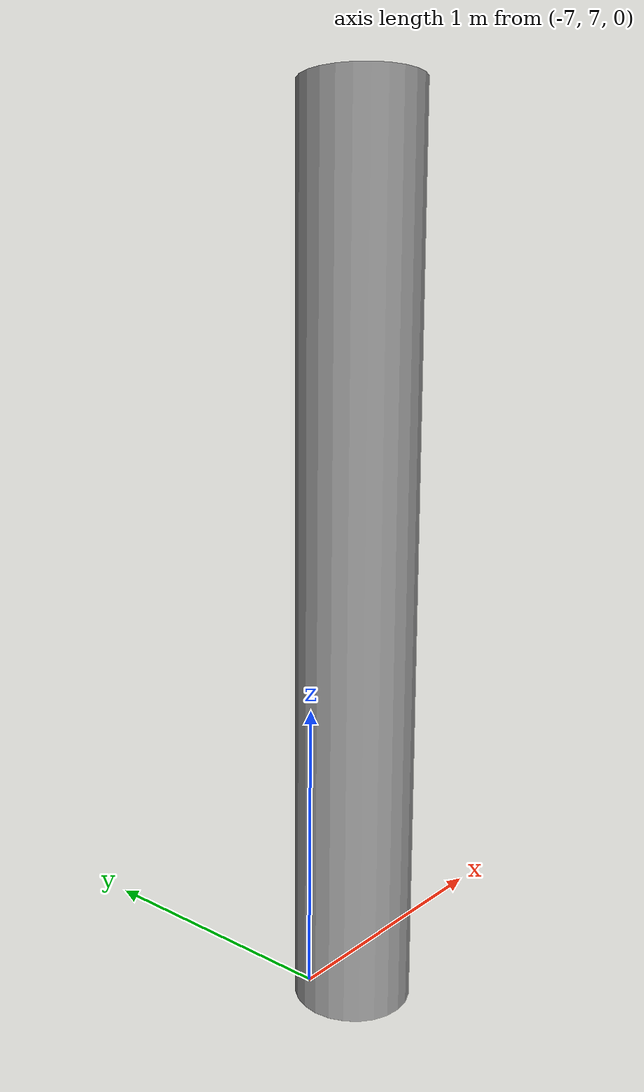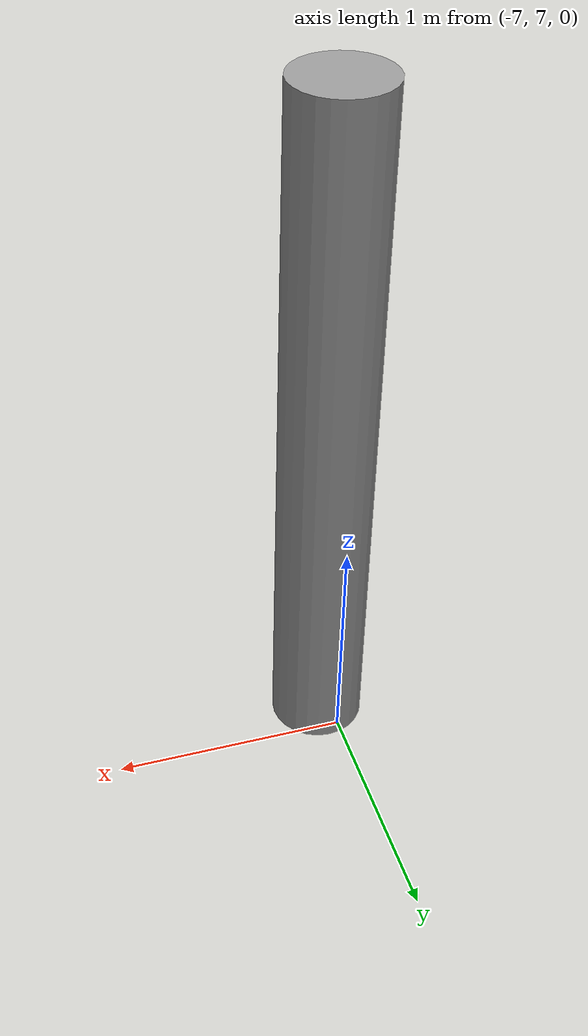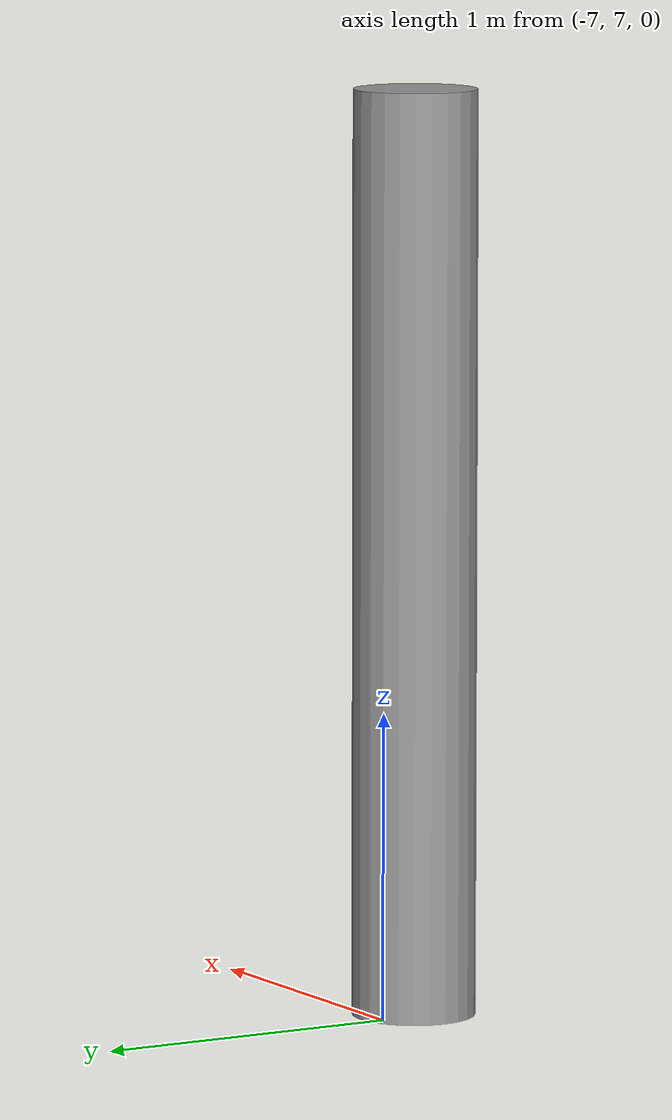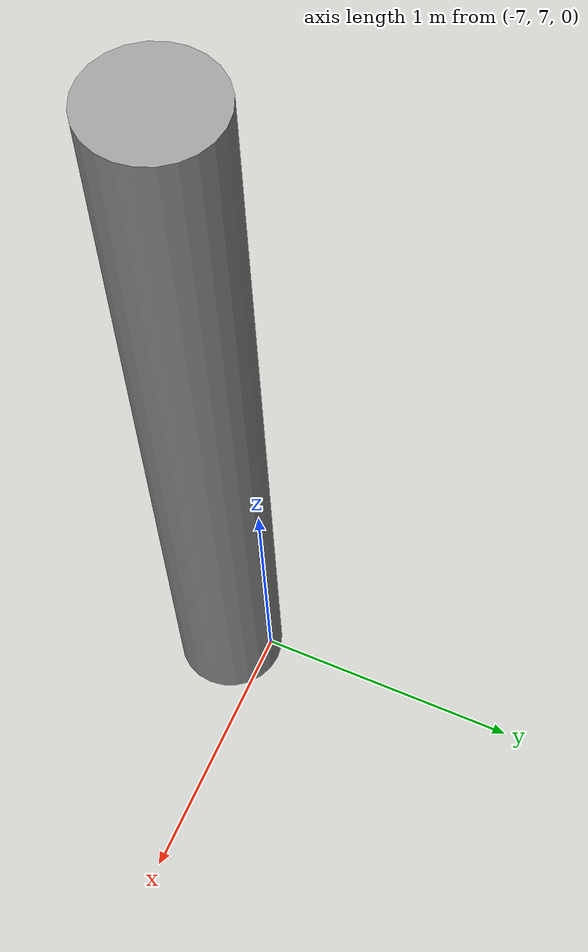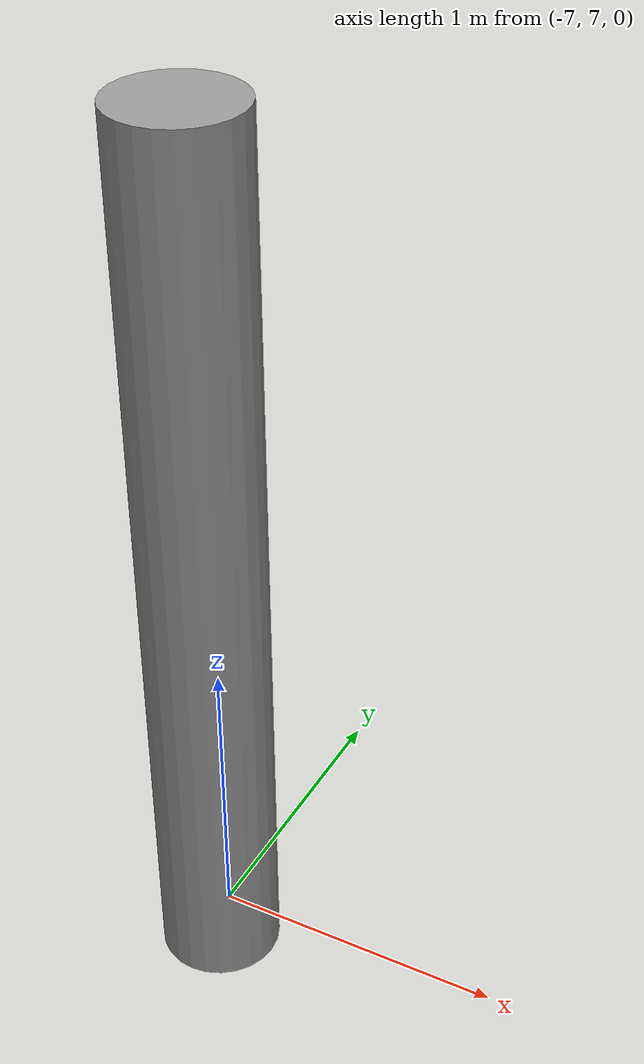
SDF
<?xml version='1.0'?>
<sdf version='1.6'>
  <model name='Pilar'>
    <link name='link_5'>
      <inertial>
        <mass>1</mass>
        <inertia>
          <ixx>0.145833</ixx>
          <ixy>0</ixy>
          <ixz>0</ixz>
          <iyy>0.145833</iyy>
          <iyz>0</iyz>
          <izz>0.125</izz>
        </inertia>
        <pose frame=''>0 0 0 0 -0 0</pose>
      </inertial>
      <pose frame=''>-6.94495 6.85405 0.5 0 -0 0</pose>
      <gravity>1</gravity>
      <self_collide>0</self_collide>
      <kinematic>0</kinematic>
      <enable_wind>0</enable_wind>
      <visual name='visual'>
        <pose frame=''>0 0 1 0 -0 0</pose>
        <geometry>
          <cylinder>
            <radius>0.2</radius>
            <length>3</length>
          </cylinder>
        </geometry>
        <material>
          <lighting>1</lighting>
          <script>
            <uri>file://media/materials/scripts/gazebo.material</uri>
            <name>Gazebo/Grey</name>
          </script>
          <shader type='vertex'>
            <normal_map>__default__</normal_map>
          </shader>
          <ambient>0.827 0.843 0.812 1</ambient>
          <diffuse>0.333 0.341 0.325 1</diffuse>
          <specular>0.333 0.341 0.325 1</specular>
          <emissive>0.333 0.341 0.325 1</emissive>
        </material>
        <transparency>0</transparency>
        <cast_shadows>1</cast_shadows>
      </visual>
      <collision name='collision'>
        <laser_retro>0</laser_retro>
        <max_contacts>10</max_contacts>
        <pose frame=''>0 0 1 0 -0 0</pose>
        <geometry>
          <cylinder>
            <radius>0.2</radius>
            <length>3</length>
          </cylinder>
        </geometry>
        <surface>
          <friction>
            <ode>
              <mu>1</mu>
              <mu2>1</mu2>
              <fdir1>0 0 0</fdir1>
              <slip1>0</slip1>
              <slip2>0</slip2>
            </ode>
            <torsional>
              <coefficient>1</coefficient>
              <patch_radius>0</patch_radius>
              <surface_radius>0</surface_radius>
              <use_patch_radius>1</use_patch_radius>
              <ode>
                <slip>0</slip>
              </ode>
            </torsional>
          </friction>
          <bounce>
            <restitution_coefficient>0</restitution_coefficient>
            <threshold>1e+06</threshold>
          </bounce>
          <contact>
            <collide_without_contact>0</collide_without_contact>
            <collide_without_contact_bitmask>1</collide_without_contact_bitmask>
            <collide_bitmask>1</collide_bitmask>
            <ode>
              <soft_cfm>0</soft_cfm>
              <soft_erp>0.2</soft_erp>
              <kp>1e+13</kp>
              <kd>1</kd>
              <max_vel>0.01</max_vel>
              <min_depth>0</min_depth>
            </ode>
            <bullet>
              <split_impulse>1</split_impulse>
              <split_impulse_penetration_threshold>-0.01</split_impulse_penetration_threshold>
              <soft_cfm>0</soft_cfm>
              <soft_erp>0.2</soft_erp>
              <kp>1e+13</kp>
              <kd>1</kd>
            </bullet>
          </contact>
        </surface>
      </collision>
    </link>
    <static>true</static>
    <allow_auto_disable>1</allow_auto_disable>
  </model>
</sdf>
